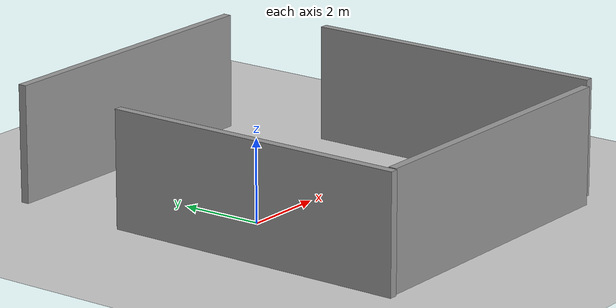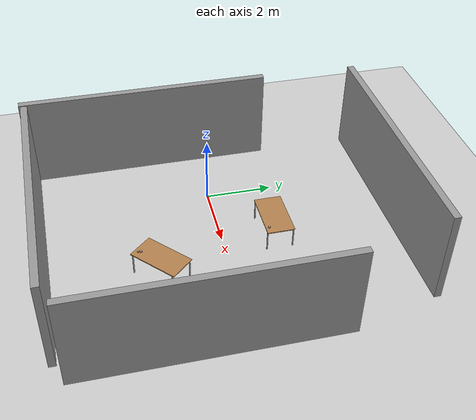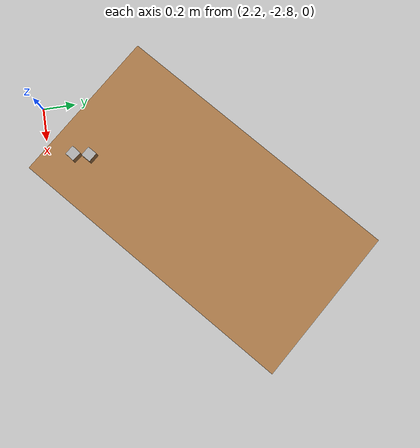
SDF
<sdf version="1.7">
 <world name="default">
  <model name="ground_plane">
   <static>1</static>
   <link name="link">
    <collision name="collision">
     <geometry><plane><normal>0 0 1</normal><size>100 100</size></plane></geometry>
     <surface>
      <contact><collide_bitmask>65535</collide_bitmask></contact>
      <friction><ode><mu>100</mu><mu2>50</mu2></ode></friction>
     </surface>
    </collision>
    <visual name="visual">
     <cast_shadows>0</cast_shadows>
     <geometry><plane><normal>0 0 1</normal><size>100 100</size></plane></geometry>
     <material>
      <script><uri>file://media/materials/scripts/gazebo.material</uri><name>Gazebo/Grey</name></script>
     </material>
    </visual>
   </link>
  </model>
  <light name="sun" type="directional">
   <pose>0 0 10 0 -0 0</pose>
   <diffuse>0.8 0.8 0.8 1</diffuse>
   <specular>0.2 0.2 0.2 1</specular>
   <attenuation>
    <range>1000</range>
    <constant>0.9</constant>
    <linear>0.01</linear>
    <quadratic>0.001</quadratic>
   </attenuation>
   <direction>-0.5 0.1 -0.9</direction>
   <spot><inner_angle>0</inner_angle><outer_angle>0</outer_angle><falloff>0</falloff></spot>
  </light>
  <gravity>0 0 -9.8</gravity>
  <magnetic_field>6e-06 2.3e-05 -4.2e-05</magnetic_field>
  <atmosphere type="adiabatic"/>
  <physics type="ode">
   <max_step_size>0.001</max_step_size>
   <real_time_factor>1</real_time_factor>
   <real_time_update_rate>1000</real_time_update_rate>
  </physics>
  <scene><ambient>0.4 0.4 0.4 1</ambient><background>0.7 0.7 0.7 1</background><shadows>1</shadows></scene>
  <spherical_coordinates>
   <surface_model>EARTH_WGS84</surface_model>
   <latitude_deg>0</latitude_deg>
   <longitude_deg>0</longitude_deg>
   <elevation>0</elevation>
   <heading_deg>0</heading_deg>
  </spherical_coordinates>
  <model name="table">
   <static>1</static>
   <link name="link">
    <collision name="surface">
     <pose>0 0 0.65 0 -0 0</pose>
     <geometry><box><size>1.5 0.8 0.03</size></box></geometry>
     <surface><friction><ode><mu>0.6</mu><mu2>0.6</mu2></ode></friction></surface>
    </collision>
    <visual name="visual1">
     <pose>0 0 0.65 0 -0 0</pose>
     <geometry><box><size>1.5 0.8 0.03</size></box></geometry>
     <material>
      <script><uri>file://media/materials/scripts/gazebo.material</uri><name>Gazebo/Wood</name></script>
     </material>
    </visual>
    <collision name="front_left_leg">
     <pose>0.68 0.38 0.32 0 -0 0</pose>
     <geometry><cylinder><radius>0.02</radius><length>0.65</length></cylinder></geometry>
    </collision>
    <visual name="front_left_leg">
     <pose>0.68 0.38 0.32 0 -0 0</pose>
     <geometry><cylinder><radius>0.02</radius><length>0.65</length></cylinder></geometry>
     <material>
      <script><uri>file://media/materials/scripts/gazebo.material</uri><name>Gazebo/Grey</name></script>
     </material>
    </visual>
    <collision name="front_right_leg">
     <pose>0.68 -0.38 0.32 0 -0 0</pose>
     <geometry><cylinder><radius>0.02</radius><length>0.65</length></cylinder></geometry>
    </collision>
    <visual name="front_right_leg">
     <pose>0.68 -0.38 0.32 0 -0 0</pose>
     <geometry><cylinder><radius>0.02</radius><length>0.65</length></cylinder></geometry>
     <material>
      <script><uri>file://media/materials/scripts/gazebo.material</uri><name>Gazebo/Grey</name></script>
     </material>
    </visual>
    <collision name="back_right_leg">
     <pose>-0.68 -0.38 0.32 0 -0 0</pose>
     <geometry><cylinder><radius>0.02</radius><length>0.65</length></cylinder></geometry>
    </collision>
    <visual name="back_right_leg">
     <pose>-0.68 -0.38 0.32 0 -0 0</pose>
     <geometry><cylinder><radius>0.02</radius><length>0.65</length></cylinder></geometry>
     <material>
      <script><uri>file://media/materials/scripts/gazebo.material</uri><name>Gazebo/Grey</name></script>
     </material>
    </visual>
    <collision name="back_left_leg">
     <pose>-0.68 0.38 0.32 0 -0 0</pose>
     <geometry><cylinder><radius>0.02</radius><length>0.65</length></cylinder></geometry>
    </collision>
    <visual name="back_left_leg">
     <pose>-0.68 0.38 0.32 0 -0 0</pose>
     <geometry><cylinder><radius>0.02</radius><length>0.65</length></cylinder></geometry>
     <material>
      <script><uri>file://media/materials/scripts/gazebo.material</uri><name>Gazebo/Grey</name></script>
     </material>
    </visual>
   </link>
   <pose>3.00768 -1.93691 0 0 -0 0.733513</pose>
  </model>
  <model name="grey_wall">
   <static>1</static>
   <link name="link">
    <pose>0 0 1.4 0 -0 0</pose>
    <collision name="collision"><geometry><box><size>7.5 0.2 2.8</size></box></geometry></collision>
    <visual name="visual">
     <cast_shadows>0</cast_shadows>
     <geometry><box><size>7.5 0.2 2.8</size></box></geometry>
     <material>
      <script>
       <uri>model://grey_wall/materials/scripts</uri>
       <uri>model://grey_wall/materials/textures</uri>
       <name>vrc/grey_wall</name>
      </script>
     </material>
    </visual>
   </link>
   <pose>1.79118 -5.09267 0 0 -0 0</pose>
  </model>
  <model name="grey_wall_0">
   <static>1</static>
   <link name="link">
    <pose>0 0 1.4 0 -0 0</pose>
    <collision name="collision"><geometry><box><size>7.5 0.2 2.8</size></box></geometry></collision>
    <visual name="visual">
     <cast_shadows>0</cast_shadows>
     <geometry><box><size>7.5 0.2 2.8</size></box></geometry>
     <material>
      <script>
       <uri>model://grey_wall/materials/scripts</uri>
       <uri>model://grey_wall/materials/textures</uri>
       <name>vrc/grey_wall</name>
      </script>
     </material>
    </visual>
   </link>
   <pose>-2.08885 -1.49471 0 0 0 -1.57411</pose>
  </model>
  <model name="wood_cube_0">
   <link name="link">
    <pose>0 0 0.025 0 -0 0</pose>
    <inertial>
     <mass>0.0565</mass>
     <inertia>
      <ixx>2.35417e-05</ixx>
      <ixy>0</ixy>
      <ixz>0</ixz>
      <iyy>2.35417e-05</iyy>
      <iyz>0</iyz>
      <izz>2.35417e-05</izz>
     </inertia>
    </inertial>
    <collision name="collision">
     <geometry><box><size>0.05 0.05 0.05</size></box></geometry>
     <surface>
      <contact>
       <poissons_ratio>0.347</poissons_ratio>
       <elastic_modulus>8.8e+09</elastic_modulus>
       <ode><kp>100000</kp><kd>1</kd><max_vel>1</max_vel><min_depth>0.001</min_depth></ode>
      </contact>
      <friction>
       <torsional>
        <coefficient>1</coefficient>
        <use_patch_radius>0</use_patch_radius>
        <surface_radius>0.05</surface_radius>
       </torsional>
      </friction>
     </surface>
    </collision>
    <visual name="visual">
     <geometry><box><size>0.05 0.05 0.05</size></box></geometry>
     <material>
      <script><uri>file://media/materials/scripts/gazebo.material</uri><name>Gazebo/Wood</name></script>
     </material>
    </visual>
   </link>
   <frame name="Apriltag36_11_00000::__model__" attached_to="Apriltag36_11_00000::main">
    <pose relative_to="__model__">0 0 0.05 0 -0 0</pose>
   </frame>
   <link name="Apriltag36_11_00000::main">
    <pose relative_to="Apriltag36_11_00000::__model__">0 0 0 0 -0 0</pose>
    <visual name="main_Visual">
     <geometry><box><size>0.05 0.05 0.001</size></box></geometry>
     <material>
      <script>
       <uri>model://Apriltag36_11_00000/materials/scripts</uri>
       <uri>model://Apriltag36_11_00000/materials/textures</uri>
       <name>Apriltag36_11_00000</name>
      </script>
     </material>
    </visual>
    <inertial>
     <inertia><ixx>1</ixx><ixy>0</ixy><ixz>0</ixz><iyy>1</iyy><iyz>0</iyz><izz>1</izz></inertia>
     <mass>1</mass>
    </inertial>
   </link>
   <static>0</static>
   <joint name="Apriltag36_11_00000_joint" type="fixed">
    <child>Apriltag36_11_00000::main</child>
    <parent>link</parent>
   </joint>
   <pose>2.70565 -2.43467 0.663974 -0 1e-06 -0.828545</pose>
  </model>
  <model name="grey_wall_1">
   <static>1</static>
   <link name="link">
    <pose>0 0 1.4 0 -0 0</pose>
    <collision name="collision"><geometry><box><size>7.5 0.2 2.8</size></box></geometry></collision>
    <visual name="visual">
     <cast_shadows>0</cast_shadows>
     <geometry><box><size>7.5 0.2 2.8</size></box></geometry>
     <material>
      <script>
       <uri>model://grey_wall/materials/scripts</uri>
       <uri>model://grey_wall/materials/textures</uri>
       <name>vrc/grey_wall</name>
      </script>
     </material>
    </visual>
   </link>
   <pose>1.74326 5.11585 0 0 -0 0</pose>
  </model>
  <model name="grey_wall_2">
   <static>1</static>
   <link name="link">
    <pose>0 0 1.4 0 -0 0</pose>
    <collision name="collision"><geometry><box><size>7.5 0.2 2.8</size></box></geometry></collision>
    <visual name="visual">
     <cast_shadows>0</cast_shadows>
     <geometry><box><size>7.5 0.2 2.8</size></box></geometry>
     <material>
      <script>
       <uri>model://grey_wall/materials/scripts</uri>
       <uri>model://grey_wall/materials/textures</uri>
       <name>vrc/grey_wall</name>
      </script>
     </material>
    </visual>
   </link>
   <pose>6.05708 -1.11073 0 0 0 -1.57217</pose>
  </model>
  <model name="wood_cube_1">
   <link name="link">
    <pose>0 0 0.025 0 -0 0</pose>
    <inertial>
     <mass>0.0565</mass>
     <inertia>
      <ixx>2.35417e-05</ixx>
      <ixy>0</ixy>
      <ixz>0</ixz>
      <iyy>2.35417e-05</iyy>
      <iyz>0</iyz>
      <izz>2.35417e-05</izz>
     </inertia>
    </inertial>
    <collision name="collision">
     <geometry><box><size>0.05 0.05 0.05</size></box></geometry>
     <surface>
      <contact>
       <poissons_ratio>0.347</poissons_ratio>
       <elastic_modulus>8.8e+09</elastic_modulus>
       <ode><kp>100000</kp><kd>1</kd><max_vel>1</max_vel><min_depth>0.001</min_depth></ode>
      </contact>
      <friction>
       <torsional>
        <coefficient>1</coefficient>
        <use_patch_radius>0</use_patch_radius>
        <surface_radius>0.05</surface_radius>
       </torsional>
      </friction>
     </surface>
    </collision>
    <visual name="visual">
     <geometry><box><size>0.05 0.05 0.05</size></box></geometry>
     <material>
      <script><uri>file://media/materials/scripts/gazebo.material</uri><name>Gazebo/Wood</name></script>
     </material>
    </visual>
   </link>
   <frame name="Apriltag36_11_00001::__model__" attached_to="Apriltag36_11_00001::main">
    <pose relative_to="__model__">0 0 0.05 0 -0 0</pose>
   </frame>
   <link name="Apriltag36_11_00001::main">
    <pose relative_to="Apriltag36_11_00001::__model__">0 0 0 0 -0 0</pose>
    <visual name="main_Visual">
     <geometry><box><size>0.05 0.05 0.001</size></box></geometry>
     <material>
      <script>
       <uri>model://Apriltag36_11_00001/materials/scripts</uri>
       <uri>model://Apriltag36_11_00001/materials/textures</uri>
       <name>Apriltag36_11_00001</name>
      </script>
     </material>
    </visual>
    <inertial>
     <inertia><ixx>1</ixx><ixy>0</ixy><ixz>0</ixz><iyy>1</iyy><iyz>0</iyz><izz>1</izz></inertia>
     <mass>1</mass>
    </inertial>
   </link>
   <static>0</static>
   <joint name="Apriltag36_11_00001_joint" type="fixed">
    <child>Apriltag36_11_00001::main</child>
    <parent>link</parent>
   </joint>
   <pose>2.69044 -2.50934 0.663974 0 1e-06 0.686748</pose>
  </model>
  <model name="table_0">
   <static>1</static>
   <link name="link">
    <collision name="surface">
     <pose>0 0 0.65 0 -0 0</pose>
     <geometry><box><size>1.5 0.8 0.03</size></box></geometry>
     <surface><friction><ode><mu>0.6</mu><mu2>0.6</mu2></ode></friction></surface>
    </collision>
    <visual name="visual1">
     <pose>0 0 0.65 0 -0 0</pose>
     <geometry><box><size>1.5 0.8 0.03</size></box></geometry>
     <material>
      <script><uri>file://media/materials/scripts/gazebo.material</uri><name>Gazebo/Wood</name></script>
     </material>
    </visual>
    <collision name="front_left_leg">
     <pose>0.68 0.38 0.32 0 -0 0</pose>
     <geometry><cylinder><radius>0.02</radius><length>0.65</length></cylinder></geometry>
    </collision>
    <visual name="front_left_leg">
     <pose>0.68 0.38 0.32 0 -0 0</pose>
     <geometry><cylinder><radius>0.02</radius><length>0.65</length></cylinder></geometry>
     <material>
      <script><uri>file://media/materials/scripts/gazebo.material</uri><name>Gazebo/Grey</name></script>
     </material>
    </visual>
    <collision name="front_right_leg">
     <pose>0.68 -0.38 0.32 0 -0 0</pose>
     <geometry><cylinder><radius>0.02</radius><length>0.65</length></cylinder></geometry>
    </collision>
    <visual name="front_right_leg">
     <pose>0.68 -0.38 0.32 0 -0 0</pose>
     <geometry><cylinder><radius>0.02</radius><length>0.65</length></cylinder></geometry>
     <material>
      <script><uri>file://media/materials/scripts/gazebo.material</uri><name>Gazebo/Grey</name></script>
     </material>
    </visual>
    <collision name="back_right_leg">
     <pose>-0.68 -0.38 0.32 0 -0 0</pose>
     <geometry><cylinder><radius>0.02</radius><length>0.65</length></cylinder></geometry>
    </collision>
    <visual name="back_right_leg">
     <pose>-0.68 -0.38 0.32 0 -0 0</pose>
     <geometry><cylinder><radius>0.02</radius><length>0.65</length></cylinder></geometry>
     <material>
      <script><uri>file://media/materials/scripts/gazebo.material</uri><name>Gazebo/Grey</name></script>
     </material>
    </visual>
    <collision name="back_left_leg">
     <pose>-0.68 0.38 0.32 0 -0 0</pose>
     <geometry><cylinder><radius>0.02</radius><length>0.65</length></cylinder></geometry>
    </collision>
    <visual name="back_left_leg">
     <pose>-0.68 0.38 0.32 0 -0 0</pose>
     <geometry><cylinder><radius>0.02</radius><length>0.65</length></cylinder></geometry>
     <material>
      <script><uri>file://media/materials/scripts/gazebo.material</uri><name>Gazebo/Grey</name></script>
     </material>
    </visual>
   </link>
   <pose>1.99929 1.54497 0 0 -0 0</pose>
  </model>
  <model name="wood_cube_2">
   <link name="link">
    <pose>0 0 0.025 0 -0 0</pose>
    <inertial>
     <mass>0.0565</mass>
     <inertia>
      <ixx>2.35417e-05</ixx>
      <ixy>0</ixy>
      <ixz>0</ixz>
      <iyy>2.35417e-05</iyy>
      <iyz>0</iyz>
      <izz>2.35417e-05</izz>
     </inertia>
    </inertial>
    <collision name="collision">
     <geometry><box><size>0.05 0.05 0.05</size></box></geometry>
     <surface>
      <contact>
       <poissons_ratio>0.347</poissons_ratio>
       <elastic_modulus>8.8e+09</elastic_modulus>
       <ode><kp>100000</kp><kd>1</kd><max_vel>1</max_vel><min_depth>0.001</min_depth></ode>
      </contact>
      <friction>
       <torsional>
        <coefficient>1</coefficient>
        <use_patch_radius>0</use_patch_radius>
        <surface_radius>0.05</surface_radius>
       </torsional>
      </friction>
     </surface>
    </collision>
    <visual name="visual">
     <geometry><box><size>0.05 0.05 0.05</size></box></geometry>
     <material>
      <script><uri>file://media/materials/scripts/gazebo.material</uri><name>Gazebo/Wood</name></script>
     </material>
    </visual>
   </link>
   <frame name="Apriltag36_11_00002::__model__" attached_to="Apriltag36_11_00002::main">
    <pose relative_to="__model__">0 0 0.05 0 -0 0</pose>
   </frame>
   <link name="Apriltag36_11_00002::main">
    <pose relative_to="Apriltag36_11_00002::__model__">0 0 0 0 -0 0</pose>
    <visual name="main_Visual">
     <geometry><box><size>0.05 0.05 0.001</size></box></geometry>
     <material>
      <script>
       <uri>model://Apriltag36_11_00002/materials/scripts</uri>
       <uri>model://Apriltag36_11_00002/materials/textures</uri>
       <name>Apriltag36_11_00002</name>
      </script>
     </material>
    </visual>
    <inertial>
     <inertia><ixx>1</ixx><ixy>0</ixy><ixz>0</ixz><iyy>1</iyy><iyz>0</iyz><izz>1</izz></inertia>
     <mass>1</mass>
    </inertial>
   </link>
   <static>0</static>
   <joint name="Apriltag36_11_00002_joint" type="fixed">
    <child>Apriltag36_11_00002::main</child>
    <parent>link</parent>
   </joint>
   <pose>2.53445 1.24837 0.663974 0 1e-06 -1e-06</pose>
  </model>
 </world>
</sdf>
